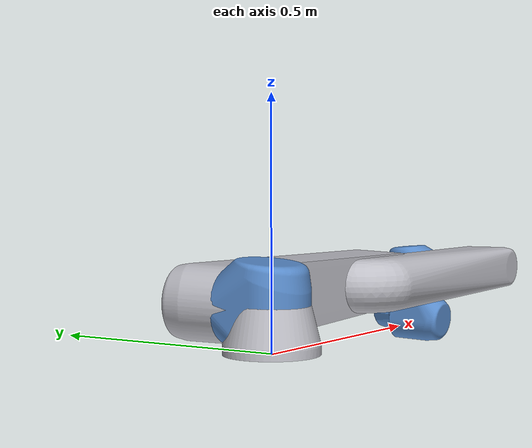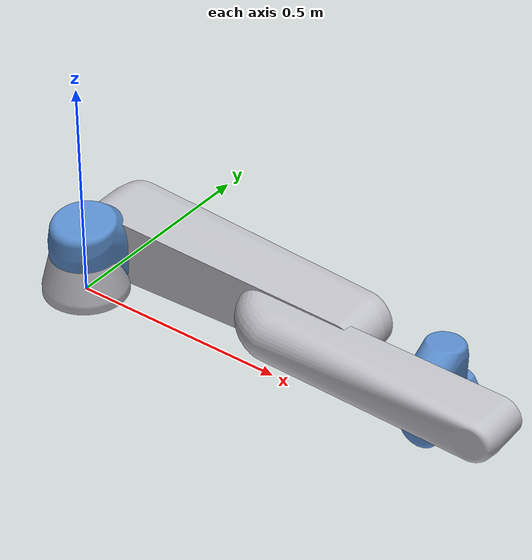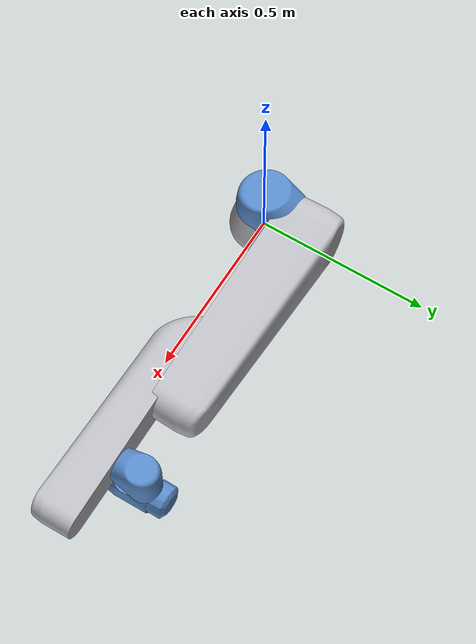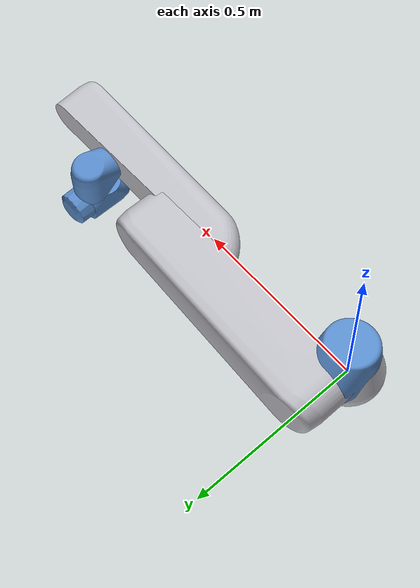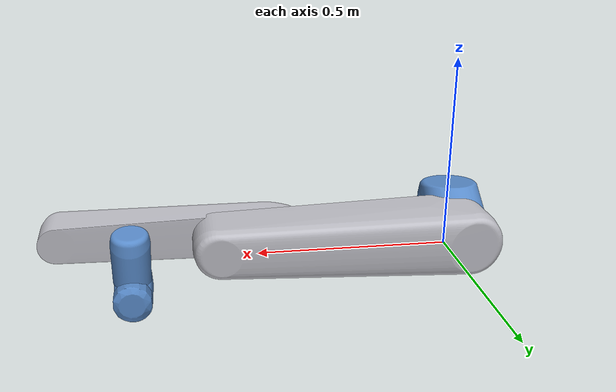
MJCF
<mujoco model="ur5">
  <compiler angle="radian" meshdir="assets/"/>

  <size nkey="1"/>

  <asset>
    <material name="ur5_grey" rgba="0.75 0.75 0.78 1"/>
    <material name="ur5_blue" rgba="0.35 0.55 0.8 1"/>
    <mesh name="base" file="base.stl"/>
    <mesh name="shoulder" file="shoulder.stl"/>
    <mesh name="upperarm" file="upperarm.stl"/>
    <mesh name="forearm" file="forearm.stl"/>
    <mesh name="wrist1" file="wrist1.stl"/>
    <mesh name="wrist2" file="wrist2.stl"/>
    <mesh name="wrist3" file="wrist3.stl"/>
  </asset>

  <worldbody>
    <body name="base_link">
      <body name="base_link_inertia" quat="0 0 0 1">
        <inertial pos="0 0 0" quat="0.5 0.5 -0.5 0.5" mass="4" diaginertia="0.0072 0.00443333 0.00443333"/>
        <geom quat="0 0 0 1" type="mesh" material="ur5_grey" mesh="base"/>
        <body name="shoulder_link" pos="0 0 0.089159">
          <inertial pos="0 -0.00193 -0.02561" mass="3.7" diaginertia="0.0149724 0.0149724 0.0104063"/>
          <joint name="shoulder_pan_joint" pos="0 0 0" axis="0 0 1" range="-6.28319 6.28319" actuatorfrcrange="-150 150" armature="0.1" damping="1"/>
          <geom quat="0 0 0 1" type="mesh" material="ur5_blue" mesh="shoulder"/>
          <body name="upper_arm_link" quat="0.707107 0.707107 0 0">
            <inertial pos="-0.2125 0 0.11336" mass="8.393" diaginertia="0.133886 0.133886 0.0151074"/>
            <joint name="shoulder_lift_joint" pos="0 0 0" axis="0 0 1" range="-6.28319 6.28319" actuatorfrcrange="-150 150" armature="0.1" damping="1"/>
            <geom pos="0 0 0.13585" quat="0.5 0.5 -0.5 -0.5" type="mesh" material="ur5_grey" mesh="upperarm"/>
            <body name="forearm_link" pos="-0.425 0 0">
              <inertial pos="-0.24225 0 0.0265" mass="2.33" diaginertia="0.0312168 0.0312168 0.004095"/>
              <joint name="elbow_joint" pos="0 0 0" axis="0 0 1" range="-3.14159 3.14159" actuatorfrcrange="-150 150" armature="0.1" damping="1"/>
              <geom pos="0 0 0.0165" quat="0.5 0.5 -0.5 -0.5" type="mesh" material="ur5_grey" mesh="forearm"/>
              <body name="wrist_1_link" pos="-0.39225 0 0.10915">
                <inertial pos="0 -0.01634 -0.0018" quat="0.5 0.5 -0.5 0.5" mass="1.219" diaginertia="0.0021942 0.00201389 0.00201389"/>
                <joint name="wrist_1_joint" pos="0 0 0" axis="0 0 1" range="-6.28319 6.28319" actuatorfrcrange="-28 28" armature="0.1" damping="1"/>
                <geom pos="0 0 -0.093" quat="0.707107 0.707107 0 0" type="mesh" material="ur5_blue" mesh="wrist1"/>
                <body name="wrist_2_link" pos="0 -0.09465 -1.9413e-11" quat="0.707107 0.707107 0 0">
                  <inertial pos="0 0.01634 -0.0018" quat="0.5 0.5 -0.5 0.5" mass="1.219" diaginertia="0.0021942 0.00183104 0.00183104"/>
                  <joint name="wrist_2_joint" pos="0 0 0" axis="0 0 1" range="-6.28319 6.28319" actuatorfrcrange="-28 28" armature="0.1" damping="1"/>
                  <geom pos="0 0 -0.095" quat="1 0 0 0" type="mesh" material="ur5_blue" mesh="wrist2"/>
                  <body name="wrist_3_link" pos="0 0.0823 -1.688e-11" quat="0.707107 -0.707107 0 0">
                    <inertial pos="0 0 -0.001159" quat="0.5 0.5 -0.5 0.5" mass="0.1879" diaginertia="0.000132117 8.06248e-05 8.06248e-05"/>
                    <joint name="wrist_3_joint" pos="0 0 0" axis="0 0 1" range="-6.28319 6.28319" actuatorfrcrange="-28 28" armature="0.1" damping="1"/>
                    <geom pos="0 0 -0.0818" quat="0.707107 0.707107 0 0" type="mesh" material="ur5_blue" mesh="wrist3"/>
                    <body name="ft_frame" quat="0 1 0 0"/>
                    <body name="flange" quat="0.5 -0.5 -0.5 -0.5">
                      <body name="tool0" quat="0.5 0.5 0.5 0.5"/>
                    </body>
                  </body>
                </body>
              </body>
            </body>
          </body>
        </body>
      </body>
      <body name="base" quat="0 0 0 1"/>
    </body>
  </worldbody>

  <actuator>
    <general name="shoulder_pan" joint="shoulder_pan_joint" ctrllimited="true" ctrlrange="-6.2831 6.2831" forcelimited="true" forcerange="-150 150" biastype="affine" gainprm="2000" biasprm="0 -2000 -400"/>
    <general name="shoulder_lift" joint="shoulder_lift_joint" ctrllimited="true" ctrlrange="-6.2831 6.2831" forcelimited="true" forcerange="-150 150" biastype="affine" gainprm="2000" biasprm="0 -2000 -400"/>
    <general name="elbow" joint="elbow_joint" ctrllimited="true" ctrlrange="-3.1415 3.1415" forcelimited="true" forcerange="-150 150" biastype="affine" gainprm="2000" biasprm="0 -2000 -400"/>
    <general name="wrist_1" joint="wrist_1_joint" ctrllimited="true" ctrlrange="-6.2831 6.2831" forcelimited="true" forcerange="-28 28" biastype="affine" gainprm="500" biasprm="0 -500 -100"/>
    <general name="wrist_2" joint="wrist_2_joint" ctrllimited="true" ctrlrange="-6.2831 6.2831" forcelimited="true" forcerange="-28 28" biastype="affine" gainprm="500" biasprm="0 -500 -100"/>
    <general name="wrist_3" joint="wrist_3_joint" ctrllimited="true" ctrlrange="-6.2831 6.2831" forcelimited="true" forcerange="-28 28" biastype="affine" gainprm="500" biasprm="0 -500 -100"/>
  </actuator>

  <keyframe>
    <key name="home" qpos="-1.5708 -1.5708 1.5708 -1.5708 -1.5708 0" ctrl="-1.5708 -1.5708 1.5708 -1.5708 -1.5708 0"/>
  </keyframe>
</mujoco>
